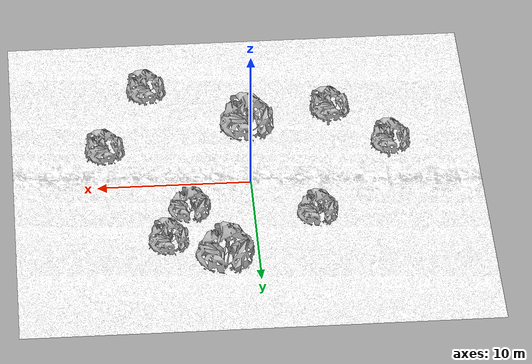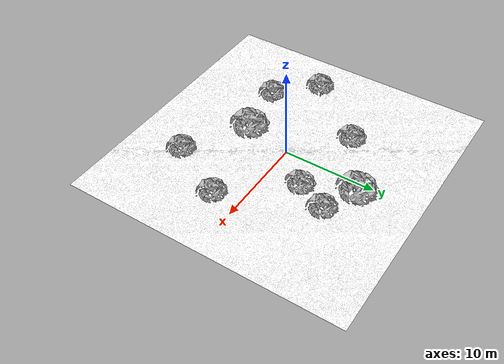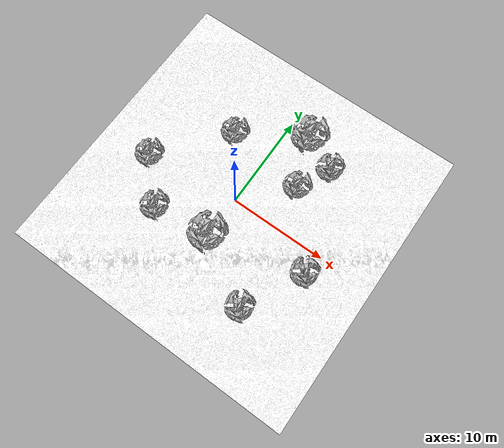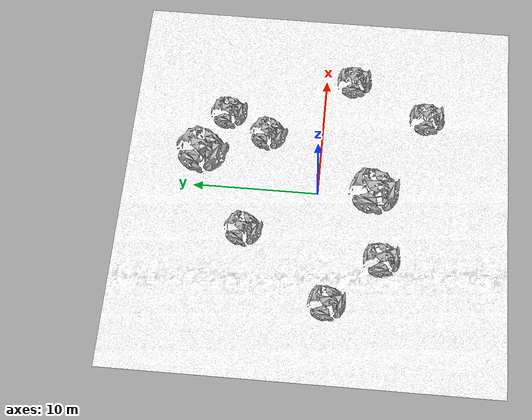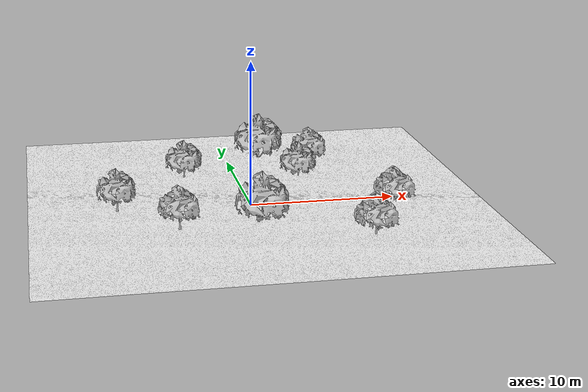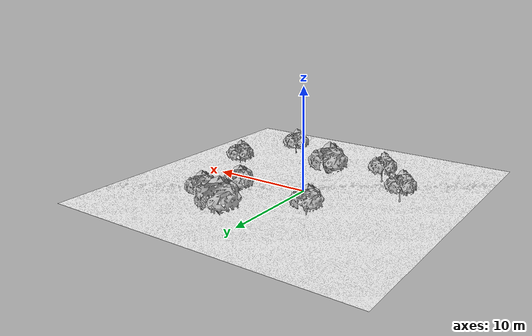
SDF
<?xml version="1.0" encoding="UTF-8" ?>
<sdf version="1.4">
  <world name="default">
    <scene>
      <ambient>0.5 0.5 0.5 1</ambient>
      <background>0.5 0.5 0.5 1</background>
      <shadows>false</shadows>
    </scene>
    <physics type="ode">
      <gravity>0 0 -9.81</gravity>
      <ode>
        <solver>
          <type>quick</type>
          <iters>10</iters>
          <sor>1.3</sor>
        </solver>
        <constraints>
          <cfm>0.0</cfm>
          <erp>0.2</erp>
          <contact_max_correcting_vel>10</contact_max_correcting_vel>
          <contact_surface_layer>0.001</contact_surface_layer>
        </constraints>
      </ode>
      <max_step_size>0.001</max_step_size>
    </physics>
    <light type="directional" name="directional_light_1">
      <pose>0 20 20 0.1 0.1 0</pose>
      <diffuse>1 1 1 1</diffuse>
      <specular>1 1 1 1</specular>
      <attenuation>
        <range>300</range>
      </attenuation>
      <direction>0.1 0.1 -1</direction>
      <cast_shadows>false</cast_shadows>
    </light>

    <include>
      <uri>model://scenario2</uri>
      <name>landscape</name>
      <pose>-15.0 -15.0 0.5 0 0 0</pose>
    </include>

    <!-- Trees!!! -->

    <include>
      <uri>model://OliveTree1</uri>
      <name>tree1</name>
      <pose>3 3 0.1 0 0 0</pose>
    </include>

    <include>
      <uri>model://OliveTree1</uri>
      <name>tree2</name>
      <pose>5 6 0.2 0 0 0.3</pose>
    </include>

    <include>
      <uri>model://OliveTree2</uri>
      <name>tree3</name>
      <pose>1 8 0.4 0 0 0</pose>
    </include>

    <include>
      <uri>model://OliveTree1</uri>
      <name>tree4</name>
      <pose>-5 4 0.3 0 0 0.1</pose>
    </include>

    <include>
      <uri>model://OliveTree1</uri>
      <name>tree5</name>
      <pose>-10 -3 0.6 0 0 0.3</pose>
    </include>

    <include>
      <uri>model://OliveTree1</uri>
      <name>tree6</name>
      <pose>-6 -7 0.52 0 0 0.5</pose>
    </include>

    <include>
      <uri>model://OliveTree2</uri>
      <name>tree7</name>
      <pose>-1 -6 0.3 0 0 0.2</pose>
    </include>

    <include>
      <uri>model://OliveTree1</uri>
      <name>tree8</name>
      <pose>9 -4 0.0 0 0 0.5</pose>
    </include>

     <include>
      <uri>model://OliveTree1</uri>
      <name>tree9</name>
      <pose>6 -10 0.3 0 0 0.5</pose>
    </include>

  </world>
</sdf>

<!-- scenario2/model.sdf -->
<sdf version="1.5">
  <model name="scenario2">
      <link name="scenario2_link">
        <collision name="scenario2_collision">
          <geometry>
            <mesh>
	          <uri>model://scenario2/meshes/scenario2.dae</uri>
              <scale>1 1 0.005</scale>
            </mesh>
          </geometry>
        </collision>
        <visual name="scenario2_visual">
          <geometry>
            <mesh>
	          <uri>model://scenario2/meshes/scenario2.dae</uri>
              <scale>1 1 0.005</scale>
            </mesh>
          </geometry>
          <cast_shadows>false</cast_shadows>
        </visual>
      </link>
      <static>true</static>
    </model>
</sdf>

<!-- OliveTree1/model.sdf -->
<sdf version="1.5">
  <model name="OliveTree1">
      <static>true</static>
      <link name="OliveTree1_link">
	  <collision name="OliveTree1_collision">
	      <geometry>
		  <mesh>
		    <uri>model://OliveTree1/meshes/OliveTree1.dae</uri>
		    <scale>1 1 1</scale>
		  </mesh>
	      </geometry>
	  </collision>
	  <visual name="OliveTree1_visual">
	      <geometry>
		<mesh>
		  <uri>model://OliveTree1/meshes/OliveTree1.dae</uri>
		  <scale>1 1 1</scale>
		</mesh>
	      </geometry>
	      <cast_shadows>false</cast_shadows>
	  </visual>
      </link>
    </model>
</sdf>

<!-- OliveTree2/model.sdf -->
<sdf version="1.5">
  <model name="OliveTree2">
      <static>true</static>
      <link name="OliveTree2_link">
	  <collision name="OliveTree2_collision">
	      <geometry>
		  <mesh>
		    <uri>model://OliveTree2/meshes/OliveTree2.dae</uri>
		    <scale>1 1 1</scale>
		  </mesh>
	      </geometry>
	  </collision>
	  <visual name="OliveTree2_visual">
	      <geometry>
		<mesh>
		  <uri>model://OliveTree2/meshes/OliveTree2.dae</uri>
		  <scale>1 1 1</scale>
		</mesh>
	      </geometry>
	      <cast_shadows>false</cast_shadows>
	  </visual>
      </link>
    </model>
</sdf>
